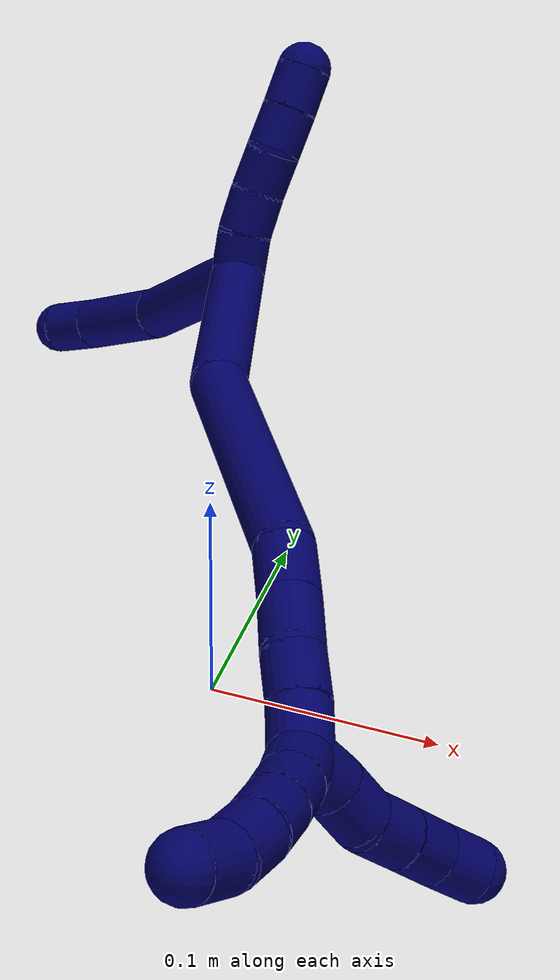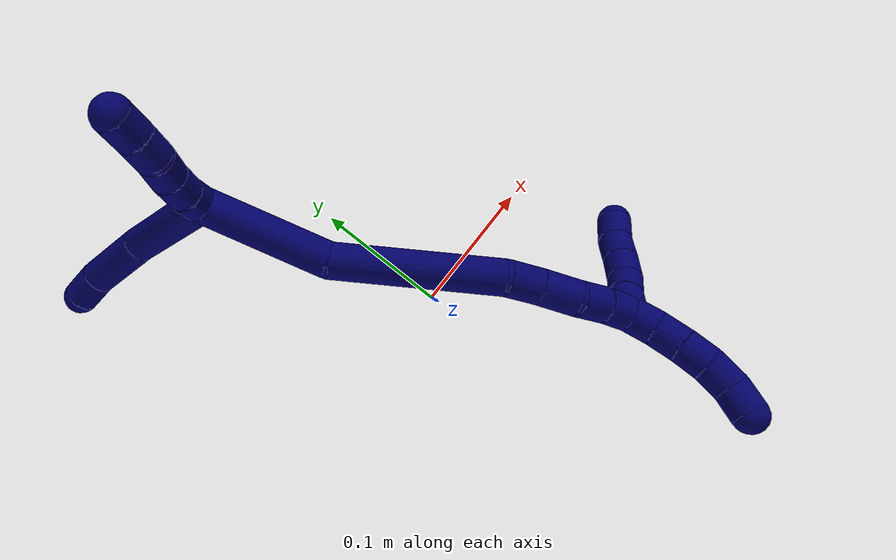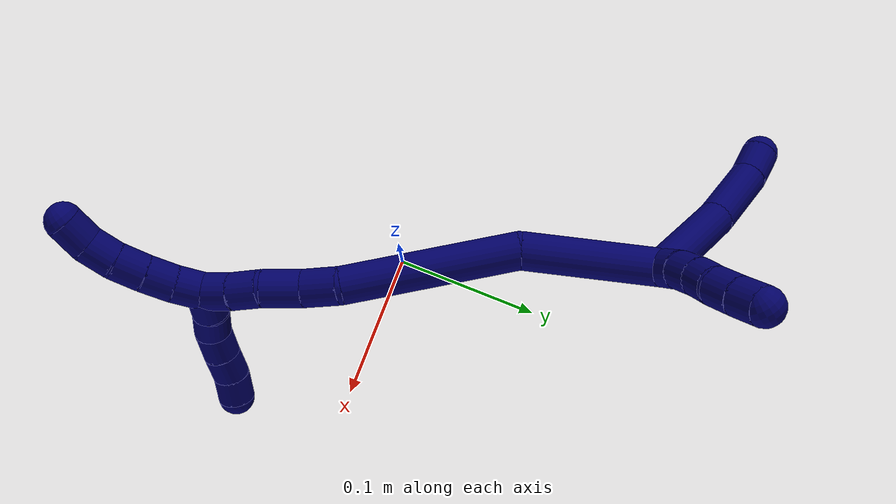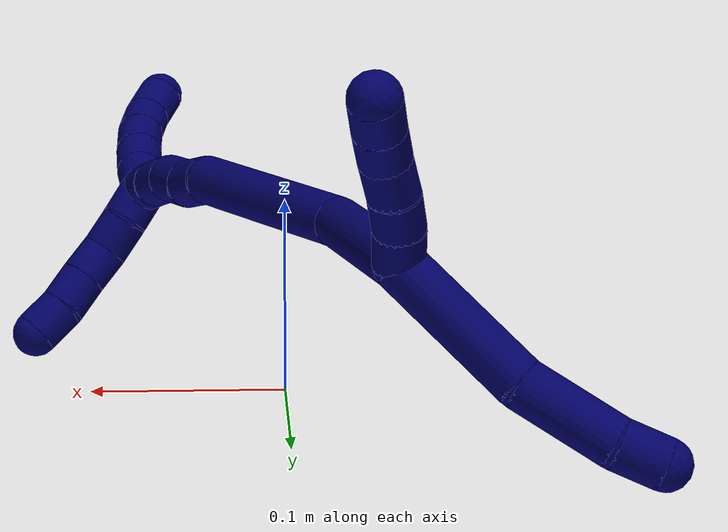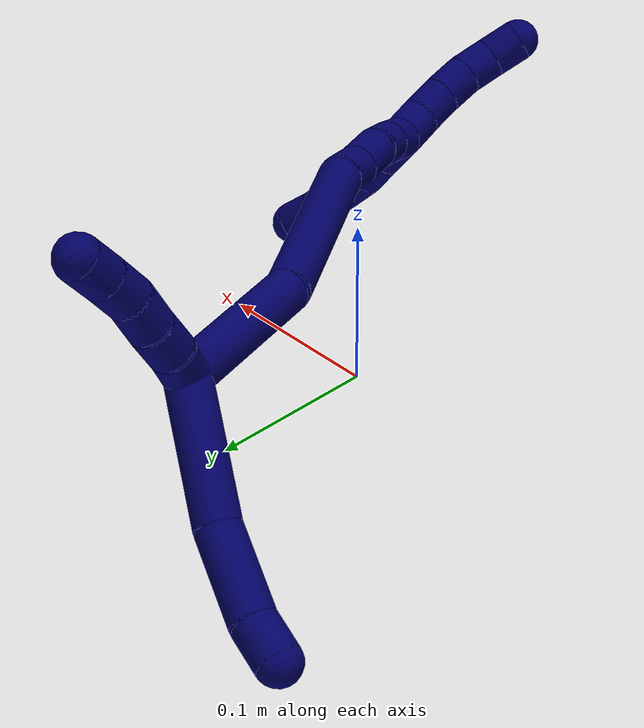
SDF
<sdf version="1.7">
 <world name="default">
  <model name="7">
   <static>0</static>
   <link name="7">
    <collision name="collision-cylinder-e_1_2_8">
     <pose>0.027148 0.025875 0.007907 -1.27424 0.787083 -0.596247</pose>
     <geometry><cylinder><radius>0.0125</radius><length>0.076656</length></cylinder></geometry>
     <surface>
      <friction><ode><mu>1.16</mu><mu2>1.16</mu2><slip1>0</slip1><slip2>0</slip2></ode></friction>
      <contact><ode><kp>1e+06</kp><kd>1</kd><max_vel>0</max_vel><min_depth>0.001</min_depth></ode></contact>
     </surface>
    </collision>
    <visual name="visual-cylinder-e_1_2_8">
     <pose>0.027148 0.025875 0.007907 -1.27424 0.787083 -0.596247</pose>
     <geometry><cylinder><radius>0.0125</radius><length>0.076656</length></cylinder></geometry>
     <material><ambient>0.003922 0 0.403922 1</ambient></material>
    </visual>
    <collision name="collision-cylinder-e_2_8_9">
     <pose>0.07015 0.071095 0.016575 -1.53144 0.686182 -0.661617</pose>
     <geometry><cylinder><radius>0.0125</radius><length>0.050047</length></cylinder></geometry>
     <surface>
      <friction><ode><mu>1.16</mu><mu2>1.16</mu2><slip1>0</slip1><slip2>0</slip2></ode></friction>
      <contact><ode><kp>1e+06</kp><kd>1</kd><max_vel>0</max_vel><min_depth>0.001</min_depth></ode></contact>
     </surface>
    </collision>
    <visual name="visual-cylinder-e_2_8_9">
     <pose>0.07015 0.071095 0.016575 -1.53144 0.686182 -0.661617</pose>
     <geometry><cylinder><radius>0.0125</radius><length>0.050047</length></cylinder></geometry>
     <material><ambient>0.003922 0 0.403922 1</ambient></material>
    </visual>
    <collision name="collision-cylinder-e_3_9_6">
     <pose>0.093151 0.099434 0.015405 -1.78233 0.66054 -0.802489</pose>
     <geometry><cylinder><radius>0.0125</radius><length>0.023297</length></cylinder></geometry>
     <surface>
      <friction><ode><mu>1.16</mu><mu2>1.16</mu2><slip1>0</slip1><slip2>0</slip2></ode></friction>
      <contact><ode><kp>1e+06</kp><kd>1</kd><max_vel>0</max_vel><min_depth>0.001</min_depth></ode></contact>
     </surface>
    </collision>
    <visual name="visual-cylinder-e_3_9_6">
     <pose>0.093151 0.099434 0.015405 -1.78233 0.66054 -0.802489</pose>
     <geometry><cylinder><radius>0.0125</radius><length>0.023297</length></cylinder></geometry>
     <material><ambient>0.003922 0 0.403922 1</ambient></material>
    </visual>
    <collision name="collision-cylinder-e_1_2_10">
     <pose>-0.009356 0.003528 -0.000127 -1.60678 -1.20995 1.24382</pose>
     <geometry><cylinder><radius>0.0125</radius><length>0.02</length></cylinder></geometry>
     <surface>
      <friction><ode><mu>1.16</mu><mu2>1.16</mu2><slip1>0</slip1><slip2>0</slip2></ode></friction>
      <contact><ode><kp>1e+06</kp><kd>1</kd><max_vel>0</max_vel><min_depth>0.001</min_depth></ode></contact>
     </surface>
    </collision>
    <visual name="visual-cylinder-e_1_2_10">
     <pose>-0.009356 0.003528 -0.000127 -1.60678 -1.20995 1.24382</pose>
     <geometry><cylinder><radius>0.0125</radius><length>0.02</length></cylinder></geometry>
     <material><ambient>0.003922 0 0.403922 1</ambient></material>
    </visual>
    <collision name="collision-cylinder-e_2_10_11">
     <pose>-0.028303 0.00969 0.00078 -1.19677 -1.28398 0.942791</pose>
     <geometry><cylinder><radius>0.0125</radius><length>0.02</length></cylinder></geometry>
     <surface>
      <friction><ode><mu>1.16</mu><mu2>1.16</mu2><slip1>0</slip1><slip2>0</slip2></ode></friction>
      <contact><ode><kp>1e+06</kp><kd>1</kd><max_vel>0</max_vel><min_depth>0.001</min_depth></ode></contact>
     </surface>
    </collision>
    <visual name="visual-cylinder-e_2_10_11">
     <pose>-0.028303 0.00969 0.00078 -1.19677 -1.28398 0.942791</pose>
     <geometry><cylinder><radius>0.0125</radius><length>0.02</length></cylinder></geometry>
     <material><ambient>0.003922 0 0.403922 1</ambient></material>
    </visual>
    <collision name="collision-cylinder-e_3_11_12">
     <pose>-0.047731 0.013948 0.002592 -1.12352 -1.38967 0.96628</pose>
     <geometry><cylinder><radius>0.0125</radius><length>0.02</length></cylinder></geometry>
     <surface>
      <friction><ode><mu>1.16</mu><mu2>1.16</mu2><slip1>0</slip1><slip2>0</slip2></ode></friction>
      <contact><ode><kp>1e+06</kp><kd>1</kd><max_vel>0</max_vel><min_depth>0.001</min_depth></ode></contact>
     </surface>
    </collision>
    <visual name="visual-cylinder-e_3_11_12">
     <pose>-0.047731 0.013948 0.002592 -1.12352 -1.38967 0.96628</pose>
     <geometry><cylinder><radius>0.0125</radius><length>0.02</length></cylinder></geometry>
     <material><ambient>0.003922 0 0.403922 1</ambient></material>
    </visual>
    <collision name="collision-cylinder-e_4_12_13">
     <pose>-0.066772 0.018642 0.005792 -0.903162 -1.16912 0.621097</pose>
     <geometry><cylinder><radius>0.0125</radius><length>0.02</length></cylinder></geometry>
     <surface>
      <friction><ode><mu>1.16</mu><mu2>1.16</mu2><slip1>0</slip1><slip2>0</slip2></ode></friction>
      <contact><ode><kp>1e+06</kp><kd>1</kd><max_vel>0</max_vel><min_depth>0.001</min_depth></ode></contact>
     </surface>
    </collision>
    <visual name="visual-cylinder-e_4_12_13">
     <pose>-0.066772 0.018642 0.005792 -0.903162 -1.16912 0.621097</pose>
     <geometry><cylinder><radius>0.0125</radius><length>0.02</length></cylinder></geometry>
     <material><ambient>0.003922 0 0.403922 1</ambient></material>
    </visual>
    <collision name="collision-cylinder-e_5_13_5">
     <pose>-0.085016 0.025157 0.010742 -0.9374 -1.12915 0.62064</pose>
     <geometry><cylinder><radius>0.0125</radius><length>0.02</length></cylinder></geometry>
     <surface>
      <friction><ode><mu>1.16</mu><mu2>1.16</mu2><slip1>0</slip1><slip2>0</slip2></ode></friction>
      <contact><ode><kp>1e+06</kp><kd>1</kd><max_vel>0</max_vel><min_depth>0.001</min_depth></ode></contact>
     </surface>
    </collision>
    <visual name="visual-cylinder-e_5_13_5">
     <pose>-0.085016 0.025157 0.010742 -0.9374 -1.12915 0.62064</pose>
     <geometry><cylinder><radius>0.0125</radius><length>0.02</length></cylinder></geometry>
     <material><ambient>0.003922 0 0.403922 1</ambient></material>
    </visual>
    <collision name="collision-cylinder-e_1_2_14">
     <pose>0.00746 -0.033935 -0.029124 2.28005 0.165302 0.356689</pose>
     <geometry><cylinder><radius>0.0125</radius><length>0.090674</length></cylinder></geometry>
     <surface>
      <friction><ode><mu>1.16</mu><mu2>1.16</mu2><slip1>0</slip1><slip2>0</slip2></ode></friction>
      <contact><ode><kp>1e+06</kp><kd>1</kd><max_vel>0</max_vel><min_depth>0.001</min_depth></ode></contact>
     </surface>
    </collision>
    <visual name="visual-cylinder-e_1_2_14">
     <pose>0.00746 -0.033935 -0.029124 2.28005 0.165302 0.356689</pose>
     <geometry><cylinder><radius>0.0125</radius><length>0.090674</length></cylinder></geometry>
     <material><ambient>0.003922 0 0.403922 1</ambient></material>
    </visual>
    <collision name="collision-cylinder-e_2_14_15">
     <pose>0.016392 -0.120529 -0.081952 1.99377 0.025485 0.039416</pose>
     <geometry><cylinder><radius>0.0125</radius><length>0.115534</length></cylinder></geometry>
     <surface>
      <friction><ode><mu>1.16</mu><mu2>1.16</mu2><slip1>0</slip1><slip2>0</slip2></ode></friction>
      <contact><ode><kp>1e+06</kp><kd>1</kd><max_vel>0</max_vel><min_depth>0.001</min_depth></ode></contact>
     </surface>
    </collision>
    <visual name="visual-cylinder-e_2_14_15">
     <pose>0.016392 -0.120529 -0.081952 1.99377 0.025485 0.039416</pose>
     <geometry><cylinder><radius>0.0125</radius><length>0.115534</length></cylinder></geometry>
     <material><ambient>0.003922 0 0.403922 1</ambient></material>
    </visual>
    <collision name="collision-cylinder-e_3_15_16">
     <pose>0.022054 -0.183848 -0.110671 2.01054 0.341663 0.530804</pose>
     <geometry><cylinder><radius>0.0125</radius><length>0.025008</length></cylinder></geometry>
     <surface>
      <friction><ode><mu>1.16</mu><mu2>1.16</mu2><slip1>0</slip1><slip2>0</slip2></ode></friction>
      <contact><ode><kp>1e+06</kp><kd>1</kd><max_vel>0</max_vel><min_depth>0.001</min_depth></ode></contact>
     </surface>
    </collision>
    <visual name="visual-cylinder-e_3_15_16">
     <pose>0.022054 -0.183848 -0.110671 2.01054 0.341663 0.530804</pose>
     <geometry><cylinder><radius>0.0125</radius><length>0.025008</length></cylinder></geometry>
     <material><ambient>0.003922 0 0.403922 1</ambient></material>
    </visual>
    <collision name="collision-cylinder-e_4_16_17">
     <pose>0.028785 -0.205742 -0.122896 2.14136 0.188135 0.341933</pose>
     <geometry><cylinder><radius>0.0125</radius><length>0.027174</length></cylinder></geometry>
     <surface>
      <friction><ode><mu>1.16</mu><mu2>1.16</mu2><slip1>0</slip1><slip2>0</slip2></ode></friction>
      <contact><ode><kp>1e+06</kp><kd>1</kd><max_vel>0</max_vel><min_depth>0.001</min_depth></ode></contact>
     </surface>
    </collision>
    <visual name="visual-cylinder-e_4_16_17">
     <pose>0.028785 -0.205742 -0.122896 2.14136 0.188135 0.341933</pose>
     <geometry><cylinder><radius>0.0125</radius><length>0.027174</length></cylinder></geometry>
     <material><ambient>0.003922 0 0.403922 1</ambient></material>
    </visual>
    <collision name="collision-cylinder-e_5_17_18">
     <pose>0.035153 -0.225847 -0.13388 1.97311 0.377891 0.563025</pose>
     <geometry><cylinder><radius>0.0125</radius><length>0.020748</length></cylinder></geometry>
     <surface>
      <friction><ode><mu>1.16</mu><mu2>1.16</mu2><slip1>0</slip1><slip2>0</slip2></ode></friction>
      <contact><ode><kp>1e+06</kp><kd>1</kd><max_vel>0</max_vel><min_depth>0.001</min_depth></ode></contact>
     </surface>
    </collision>
    <visual name="visual-cylinder-e_5_17_18">
     <pose>0.035153 -0.225847 -0.13388 1.97311 0.377891 0.563025</pose>
     <geometry><cylinder><radius>0.0125</radius><length>0.020748</length></cylinder></geometry>
     <material><ambient>0.003922 0 0.403922 1</ambient></material>
    </visual>
    <collision name="collision-cylinder-e_6_18_1">
     <pose>0.043283 -0.243127 -0.142084 2.05559 0.42514 0.686896</pose>
     <geometry><cylinder><radius>0.0125</radius><length>0.020863</length></cylinder></geometry>
     <surface>
      <friction><ode><mu>1.16</mu><mu2>1.16</mu2><slip1>0</slip1><slip2>0</slip2></ode></friction>
      <contact><ode><kp>1e+06</kp><kd>1</kd><max_vel>0</max_vel><min_depth>0.001</min_depth></ode></contact>
     </surface>
    </collision>
    <visual name="visual-cylinder-e_6_18_1">
     <pose>0.043283 -0.243127 -0.142084 2.05559 0.42514 0.686896</pose>
     <geometry><cylinder><radius>0.0125</radius><length>0.020863</length></cylinder></geometry>
     <material><ambient>0.003922 0 0.403922 1</ambient></material>
    </visual>
    <collision name="collision-cylinder-e_1_1_19">
     <pose>0.052283 -0.255319 -0.138537 0.443029 0.489025 0.112264</pose>
     <geometry><cylinder><radius>0.0125</radius><length>0.02</length></cylinder></geometry>
     <surface>
      <friction><ode><mu>1.16</mu><mu2>1.16</mu2><slip1>0</slip1><slip2>0</slip2></ode></friction>
      <contact><ode><kp>1e+06</kp><kd>1</kd><max_vel>0</max_vel><min_depth>0.001</min_depth></ode></contact>
     </surface>
    </collision>
    <visual name="visual-cylinder-e_1_1_19">
     <pose>0.052283 -0.255319 -0.138537 0.443029 0.489025 0.112264</pose>
     <geometry><cylinder><radius>0.0125</radius><length>0.02</length></cylinder></geometry>
     <material><ambient>0.003922 0 0.403922 1</ambient></material>
    </visual>
    <collision name="collision-cylinder-e_2_19_20">
     <pose>0.062169 -0.264007 -0.123559 0.610969 0.545498 0.175967</pose>
     <geometry><cylinder><radius>0.0125</radius><length>0.02</length></cylinder></geometry>
     <surface>
      <friction><ode><mu>1.16</mu><mu2>1.16</mu2><slip1>0</slip1><slip2>0</slip2></ode></friction>
      <contact><ode><kp>1e+06</kp><kd>1</kd><max_vel>0</max_vel><min_depth>0.001</min_depth></ode></contact>
     </surface>
    </collision>
    <visual name="visual-cylinder-e_2_19_20">
     <pose>0.062169 -0.264007 -0.123559 0.610969 0.545498 0.175967</pose>
     <geometry><cylinder><radius>0.0125</radius><length>0.02</length></cylinder></geometry>
     <material><ambient>0.003922 0 0.403922 1</ambient></material>
    </visual>
    <collision name="collision-cylinder-e_3_20_21">
     <pose>0.070403 -0.272241 -0.107632 0.35715 0.30941 0.056283</pose>
     <geometry><cylinder><radius>0.0125</radius><length>0.02</length></cylinder></geometry>
     <surface>
      <friction><ode><mu>1.16</mu><mu2>1.16</mu2><slip1>0</slip1><slip2>0</slip2></ode></friction>
      <contact><ode><kp>1e+06</kp><kd>1</kd><max_vel>0</max_vel><min_depth>0.001</min_depth></ode></contact>
     </surface>
    </collision>
    <visual name="visual-cylinder-e_3_20_21">
     <pose>0.070403 -0.272241 -0.107632 0.35715 0.30941 0.056283</pose>
     <geometry><cylinder><radius>0.0125</radius><length>0.02</length></cylinder></geometry>
     <material><ambient>0.003922 0 0.403922 1</ambient></material>
    </visual>
    <collision name="collision-cylinder-e_4_21_22">
     <pose>0.07676 -0.278542 -0.089753 0.320355 0.337626 0.055058</pose>
     <geometry><cylinder><radius>0.0125</radius><length>0.02</length></cylinder></geometry>
     <surface>
      <friction><ode><mu>1.16</mu><mu2>1.16</mu2><slip1>0</slip1><slip2>0</slip2></ode></friction>
      <contact><ode><kp>1e+06</kp><kd>1</kd><max_vel>0</max_vel><min_depth>0.001</min_depth></ode></contact>
     </surface>
    </collision>
    <visual name="visual-cylinder-e_4_21_22">
     <pose>0.07676 -0.278542 -0.089753 0.320355 0.337626 0.055058</pose>
     <geometry><cylinder><radius>0.0125</radius><length>0.02</length></cylinder></geometry>
     <material><ambient>0.003922 0 0.403922 1</ambient></material>
    </visual>
    <collision name="collision-cylinder-e_5_22_4">
     <pose>0.082356 -0.285897 -0.072105 0.46705 0.230397 0.055033</pose>
     <geometry><cylinder><radius>0.0125</radius><length>0.02</length></cylinder></geometry>
     <surface>
      <friction><ode><mu>1.16</mu><mu2>1.16</mu2><slip1>0</slip1><slip2>0</slip2></ode></friction>
      <contact><ode><kp>1e+06</kp><kd>1</kd><max_vel>0</max_vel><min_depth>0.001</min_depth></ode></contact>
     </surface>
    </collision>
    <visual name="visual-cylinder-e_5_22_4">
     <pose>0.082356 -0.285897 -0.072105 0.46705 0.230397 0.055033</pose>
     <geometry><cylinder><radius>0.0125</radius><length>0.02</length></cylinder></geometry>
     <material><ambient>0.003922 0 0.403922 1</ambient></material>
    </visual>
    <collision name="collision-cylinder-e_1_1_23">
     <pose>0.046816 -0.25749 -0.154508 2.50145 -0.077061 -0.231558</pose>
     <geometry><cylinder><radius>0.0125</radius><length>0.02</length></cylinder></geometry>
     <surface>
      <friction><ode><mu>1.16</mu><mu2>1.16</mu2><slip1>0</slip1><slip2>0</slip2></ode></friction>
      <contact><ode><kp>1e+06</kp><kd>1</kd><max_vel>0</max_vel><min_depth>0.001</min_depth></ode></contact>
     </surface>
    </collision>
    <visual name="visual-cylinder-e_1_1_23">
     <pose>0.046816 -0.25749 -0.154508 2.50145 -0.077061 -0.231558</pose>
     <geometry><cylinder><radius>0.0125</radius><length>0.02</length></cylinder></geometry>
     <material><ambient>0.003922 0 0.403922 1</ambient></material>
    </visual>
    <collision name="collision-cylinder-e_2_23_24">
     <pose>0.044986 -0.268503 -0.171066 2.60792 -0.106149 -0.383901</pose>
     <geometry><cylinder><radius>0.0125</radius><length>0.02</length></cylinder></geometry>
     <surface>
      <friction><ode><mu>1.16</mu><mu2>1.16</mu2><slip1>0</slip1><slip2>0</slip2></ode></friction>
      <contact><ode><kp>1e+06</kp><kd>1</kd><max_vel>0</max_vel><min_depth>0.001</min_depth></ode></contact>
     </surface>
    </collision>
    <visual name="visual-cylinder-e_2_23_24">
     <pose>0.044986 -0.268503 -0.171066 2.60792 -0.106149 -0.383901</pose>
     <geometry><cylinder><radius>0.0125</radius><length>0.02</length></cylinder></geometry>
     <material><ambient>0.003922 0 0.403922 1</ambient></material>
    </visual>
    <collision name="collision-cylinder-e_3_24_25">
     <pose>0.04321 -0.278155 -0.18848 2.66299 -0.071723 -0.292005</pose>
     <geometry><cylinder><radius>0.0125</radius><length>0.02</length></cylinder></geometry>
     <surface>
      <friction><ode><mu>1.16</mu><mu2>1.16</mu2><slip1>0</slip1><slip2>0</slip2></ode></friction>
      <contact><ode><kp>1e+06</kp><kd>1</kd><max_vel>0</max_vel><min_depth>0.001</min_depth></ode></contact>
     </surface>
    </collision>
    <visual name="visual-cylinder-e_3_24_25">
     <pose>0.04321 -0.278155 -0.18848 2.66299 -0.071723 -0.292005</pose>
     <geometry><cylinder><radius>0.0125</radius><length>0.02</length></cylinder></geometry>
     <material><ambient>0.003922 0 0.403922 1</ambient></material>
    </visual>
    <collision name="collision-cylinder-e_4_25_26">
     <pose>0.042656 -0.28616 -0.206733 2.79349 0.016276 0.092502</pose>
     <geometry><cylinder><radius>0.0125</radius><length>0.02</length></cylinder></geometry>
     <surface>
      <friction><ode><mu>1.16</mu><mu2>1.16</mu2><slip1>0</slip1><slip2>0</slip2></ode></friction>
      <contact><ode><kp>1e+06</kp><kd>1</kd><max_vel>0</max_vel><min_depth>0.001</min_depth></ode></contact>
     </surface>
    </collision>
    <visual name="visual-cylinder-e_4_25_26">
     <pose>0.042656 -0.28616 -0.206733 2.79349 0.016276 0.092502</pose>
     <geometry><cylinder><radius>0.0125</radius><length>0.02</length></cylinder></geometry>
     <material><ambient>0.003922 0 0.403922 1</ambient></material>
    </visual>
    <collision name="collision-cylinder-e_5_26_3">
     <pose>0.041875 -0.290363 -0.226056 3.06191 -0.094604 -1.7418</pose>
     <geometry><cylinder><radius>0.0125</radius><length>0.02</length></cylinder></geometry>
     <surface>
      <friction><ode><mu>1.16</mu><mu2>1.16</mu2><slip1>0</slip1><slip2>0</slip2></ode></friction>
      <contact><ode><kp>1e+06</kp><kd>1</kd><max_vel>0</max_vel><min_depth>0.001</min_depth></ode></contact>
     </surface>
    </collision>
    <visual name="visual-cylinder-e_5_26_3">
     <pose>0.041875 -0.290363 -0.226056 3.06191 -0.094604 -1.7418</pose>
     <geometry><cylinder><radius>0.0125</radius><length>0.02</length></cylinder></geometry>
     <material><ambient>0.003922 0 0.403922 1</ambient></material>
    </visual>
    <collision name="collision-sphere-3">
     <pose>0.04093 -0.291155 -0.235979 0 -0 0</pose>
     <geometry><sphere><radius>0.0125</radius></sphere></geometry>
     <surface>
      <friction><ode><mu>1.16</mu><mu2>1.16</mu2><slip1>0</slip1><slip2>0</slip2></ode></friction>
      <contact><ode><kp>1e+06</kp><kd>1</kd><max_vel>0</max_vel><min_depth>0.001</min_depth></ode></contact>
     </surface>
    </collision>
    <visual name="visual-sphere-3">
     <pose>0.04093 -0.291155 -0.235979 0 -0 0</pose>
     <geometry><sphere><radius>0.0125</radius></sphere></geometry>
     <material><ambient>0.003922 0 0.403922 1</ambient></material>
    </visual>
    <collision name="collision-sphere-26">
     <pose>0.042819 -0.28957 -0.216132 0 -0 0</pose>
     <geometry><sphere><radius>0.0125</radius></sphere></geometry>
     <surface>
      <friction><ode><mu>1.16</mu><mu2>1.16</mu2><slip1>0</slip1><slip2>0</slip2></ode></friction>
      <contact><ode><kp>1e+06</kp><kd>1</kd><max_vel>0</max_vel><min_depth>0.001</min_depth></ode></contact>
     </surface>
    </collision>
    <visual name="visual-sphere-26">
     <pose>0.042819 -0.28957 -0.216132 0 -0 0</pose>
     <geometry><sphere><radius>0.0125</radius></sphere></geometry>
     <material><ambient>0.003922 0 0.403922 1</ambient></material>
    </visual>
    <collision name="collision-sphere-25">
     <pose>0.042494 -0.282749 -0.197334 0 -0 0</pose>
     <geometry><sphere><radius>0.0125</radius></sphere></geometry>
     <surface>
      <friction><ode><mu>1.16</mu><mu2>1.16</mu2><slip1>0</slip1><slip2>0</slip2></ode></friction>
      <contact><ode><kp>1e+06</kp><kd>1</kd><max_vel>0</max_vel><min_depth>0.001</min_depth></ode></contact>
     </surface>
    </collision>
    <visual name="visual-sphere-25">
     <pose>0.042494 -0.282749 -0.197334 0 -0 0</pose>
     <geometry><sphere><radius>0.0125</radius></sphere></geometry>
     <material><ambient>0.003922 0 0.403922 1</ambient></material>
    </visual>
    <collision name="collision-sphere-24">
     <pose>0.043927 -0.273562 -0.179627 0 -0 0</pose>
     <geometry><sphere><radius>0.0125</radius></sphere></geometry>
     <surface>
      <friction><ode><mu>1.16</mu><mu2>1.16</mu2><slip1>0</slip1><slip2>0</slip2></ode></friction>
      <contact><ode><kp>1e+06</kp><kd>1</kd><max_vel>0</max_vel><min_depth>0.001</min_depth></ode></contact>
     </surface>
    </collision>
    <visual name="visual-sphere-24">
     <pose>0.043927 -0.273562 -0.179627 0 -0 0</pose>
     <geometry><sphere><radius>0.0125</radius></sphere></geometry>
     <material><ambient>0.003922 0 0.403922 1</ambient></material>
    </visual>
    <collision name="collision-sphere-23">
     <pose>0.046046 -0.263445 -0.162505 0 -0 0</pose>
     <geometry><sphere><radius>0.0125</radius></sphere></geometry>
     <surface>
      <friction><ode><mu>1.16</mu><mu2>1.16</mu2><slip1>0</slip1><slip2>0</slip2></ode></friction>
      <contact><ode><kp>1e+06</kp><kd>1</kd><max_vel>0</max_vel><min_depth>0.001</min_depth></ode></contact>
     </surface>
    </collision>
    <visual name="visual-sphere-23">
     <pose>0.046046 -0.263445 -0.162505 0 -0 0</pose>
     <geometry><sphere><radius>0.0125</radius></sphere></geometry>
     <material><ambient>0.003922 0 0.403922 1</ambient></material>
    </visual>
    <collision name="collision-sphere-4">
     <pose>0.08464 -0.290281 -0.063411 0 -0 0</pose>
     <geometry><sphere><radius>0.0125</radius></sphere></geometry>
     <surface>
      <friction><ode><mu>1.16</mu><mu2>1.16</mu2><slip1>0</slip1><slip2>0</slip2></ode></friction>
      <contact><ode><kp>1e+06</kp><kd>1</kd><max_vel>0</max_vel><min_depth>0.001</min_depth></ode></contact>
     </surface>
    </collision>
    <visual name="visual-sphere-4">
     <pose>0.08464 -0.290281 -0.063411 0 -0 0</pose>
     <geometry><sphere><radius>0.0125</radius></sphere></geometry>
     <material><ambient>0.003922 0 0.403922 1</ambient></material>
    </visual>
    <collision name="collision-sphere-22">
     <pose>0.080073 -0.281514 -0.080798 0 -0 0</pose>
     <geometry><sphere><radius>0.0125</radius></sphere></geometry>
     <surface>
      <friction><ode><mu>1.16</mu><mu2>1.16</mu2><slip1>0</slip1><slip2>0</slip2></ode></friction>
      <contact><ode><kp>1e+06</kp><kd>1</kd><max_vel>0</max_vel><min_depth>0.001</min_depth></ode></contact>
     </surface>
    </collision>
    <visual name="visual-sphere-22">
     <pose>0.080073 -0.281514 -0.080798 0 -0 0</pose>
     <geometry><sphere><radius>0.0125</radius></sphere></geometry>
     <material><ambient>0.003922 0 0.403922 1</ambient></material>
    </visual>
    <collision name="collision-sphere-21">
     <pose>0.073448 -0.275571 -0.098708 0 -0 0</pose>
     <geometry><sphere><radius>0.0125</radius></sphere></geometry>
     <surface>
      <friction><ode><mu>1.16</mu><mu2>1.16</mu2><slip1>0</slip1><slip2>0</slip2></ode></friction>
      <contact><ode><kp>1e+06</kp><kd>1</kd><max_vel>0</max_vel><min_depth>0.001</min_depth></ode></contact>
     </surface>
    </collision>
    <visual name="visual-sphere-21">
     <pose>0.073448 -0.275571 -0.098708 0 -0 0</pose>
     <geometry><sphere><radius>0.0125</radius></sphere></geometry>
     <material><ambient>0.003922 0 0.403922 1</ambient></material>
    </visual>
    <collision name="collision-sphere-20">
     <pose>0.067358 -0.268911 -0.116557 0 -0 0</pose>
     <geometry><sphere><radius>0.0125</radius></sphere></geometry>
     <surface>
      <friction><ode><mu>1.16</mu><mu2>1.16</mu2><slip1>0</slip1><slip2>0</slip2></ode></friction>
      <contact><ode><kp>1e+06</kp><kd>1</kd><max_vel>0</max_vel><min_depth>0.001</min_depth></ode></contact>
     </surface>
    </collision>
    <visual name="visual-sphere-20">
     <pose>0.067358 -0.268911 -0.116557 0 -0 0</pose>
     <geometry><sphere><radius>0.0125</radius></sphere></geometry>
     <material><ambient>0.003922 0 0.403922 1</ambient></material>
    </visual>
    <collision name="collision-sphere-11">
     <pose>-0.037895 0.012324 0.001813 0 -0 0</pose>
     <geometry><sphere><radius>0.0125</radius></sphere></geometry>
     <surface>
      <friction><ode><mu>1.16</mu><mu2>1.16</mu2><slip1>0</slip1><slip2>0</slip2></ode></friction>
      <contact><ode><kp>1e+06</kp><kd>1</kd><max_vel>0</max_vel><min_depth>0.001</min_depth></ode></contact>
     </surface>
    </collision>
    <visual name="visual-sphere-11">
     <pose>-0.037895 0.012324 0.001813 0 -0 0</pose>
     <geometry><sphere><radius>0.0125</radius></sphere></geometry>
     <material><ambient>0.003922 0 0.403922 1</ambient></material>
    </visual>
    <collision name="collision-sphere-10">
     <pose>-0.018712 0.007057 -0.000254 0 -0 0</pose>
     <geometry><sphere><radius>0.0125</radius></sphere></geometry>
     <surface>
      <friction><ode><mu>1.16</mu><mu2>1.16</mu2><slip1>0</slip1><slip2>0</slip2></ode></friction>
      <contact><ode><kp>1e+06</kp><kd>1</kd><max_vel>0</max_vel><min_depth>0.001</min_depth></ode></contact>
     </surface>
    </collision>
    <visual name="visual-sphere-10">
     <pose>-0.018712 0.007057 -0.000254 0 -0 0</pose>
     <geometry><sphere><radius>0.0125</radius></sphere></geometry>
     <material><ambient>0.003922 0 0.403922 1</ambient></material>
    </visual>
    <collision name="collision-sphere-6">
     <pose>0.100298 0.108427 0.013474 0 -0 0</pose>
     <geometry><sphere><radius>0.0125</radius></sphere></geometry>
     <surface>
      <friction><ode><mu>1.16</mu><mu2>1.16</mu2><slip1>0</slip1><slip2>0</slip2></ode></friction>
      <contact><ode><kp>1e+06</kp><kd>1</kd><max_vel>0</max_vel><min_depth>0.001</min_depth></ode></contact>
     </surface>
    </collision>
    <visual name="visual-sphere-6">
     <pose>0.100298 0.108427 0.013474 0 -0 0</pose>
     <geometry><sphere><radius>0.0125</radius></sphere></geometry>
     <material><ambient>0.003922 0 0.403922 1</ambient></material>
    </visual>
    <collision name="collision-sphere-9">
     <pose>0.086004 0.09044 0.017337 0 -0 0</pose>
     <geometry><sphere><radius>0.0125</radius></sphere></geometry>
     <surface>
      <friction><ode><mu>1.16</mu><mu2>1.16</mu2><slip1>0</slip1><slip2>0</slip2></ode></friction>
      <contact><ode><kp>1e+06</kp><kd>1</kd><max_vel>0</max_vel><min_depth>0.001</min_depth></ode></contact>
     </surface>
    </collision>
    <visual name="visual-sphere-9">
     <pose>0.086004 0.09044 0.017337 0 -0 0</pose>
     <geometry><sphere><radius>0.0125</radius></sphere></geometry>
     <material><ambient>0.003922 0 0.403922 1</ambient></material>
    </visual>
    <collision name="collision-sphere-2">
     <geometry><sphere><radius>0.0125</radius></sphere></geometry>
     <surface>
      <friction><ode><mu>1.16</mu><mu2>1.16</mu2><slip1>0</slip1><slip2>0</slip2></ode></friction>
      <contact><ode><kp>1e+06</kp><kd>1</kd><max_vel>0</max_vel><min_depth>0.001</min_depth></ode></contact>
     </surface>
    </collision>
    <visual name="visual-sphere-2">
     <geometry><sphere><radius>0.0125</radius></sphere></geometry>
     <material><ambient>0.003922 0 0.403922 1</ambient></material>
    </visual>
    <collision name="collision-sphere-19">
     <pose>0.056981 -0.259103 -0.130561 0 -0 0</pose>
     <geometry><sphere><radius>0.0125</radius></sphere></geometry>
     <surface>
      <friction><ode><mu>1.16</mu><mu2>1.16</mu2><slip1>0</slip1><slip2>0</slip2></ode></friction>
      <contact><ode><kp>1e+06</kp><kd>1</kd><max_vel>0</max_vel><min_depth>0.001</min_depth></ode></contact>
     </surface>
    </collision>
    <visual name="visual-sphere-19">
     <pose>0.056981 -0.259103 -0.130561 0 -0 0</pose>
     <geometry><sphere><radius>0.0125</radius></sphere></geometry>
     <material><ambient>0.003922 0 0.403922 1</ambient></material>
    </visual>
    <collision name="collision-sphere-8">
     <pose>0.054295 0.05175 0.015813 0 -0 0</pose>
     <geometry><sphere><radius>0.0125</radius></sphere></geometry>
     <surface>
      <friction><ode><mu>1.16</mu><mu2>1.16</mu2><slip1>0</slip1><slip2>0</slip2></ode></friction>
      <contact><ode><kp>1e+06</kp><kd>1</kd><max_vel>0</max_vel><min_depth>0.001</min_depth></ode></contact>
     </surface>
    </collision>
    <visual name="visual-sphere-8">
     <pose>0.054295 0.05175 0.015813 0 -0 0</pose>
     <geometry><sphere><radius>0.0125</radius></sphere></geometry>
     <material><ambient>0.003922 0 0.403922 1</ambient></material>
    </visual>
    <collision name="collision-sphere-12">
     <pose>-0.057568 0.015572 0.003371 0 -0 0</pose>
     <geometry><sphere><radius>0.0125</radius></sphere></geometry>
     <surface>
      <friction><ode><mu>1.16</mu><mu2>1.16</mu2><slip1>0</slip1><slip2>0</slip2></ode></friction>
      <contact><ode><kp>1e+06</kp><kd>1</kd><max_vel>0</max_vel><min_depth>0.001</min_depth></ode></contact>
     </surface>
    </collision>
    <visual name="visual-sphere-12">
     <pose>-0.057568 0.015572 0.003371 0 -0 0</pose>
     <geometry><sphere><radius>0.0125</radius></sphere></geometry>
     <material><ambient>0.003922 0 0.403922 1</ambient></material>
    </visual>
    <collision name="collision-sphere-13">
     <pose>-0.075976 0.021712 0.008212 0 -0 0</pose>
     <geometry><sphere><radius>0.0125</radius></sphere></geometry>
     <surface>
      <friction><ode><mu>1.16</mu><mu2>1.16</mu2><slip1>0</slip1><slip2>0</slip2></ode></friction>
      <contact><ode><kp>1e+06</kp><kd>1</kd><max_vel>0</max_vel><min_depth>0.001</min_depth></ode></contact>
     </surface>
    </collision>
    <visual name="visual-sphere-13">
     <pose>-0.075976 0.021712 0.008212 0 -0 0</pose>
     <geometry><sphere><radius>0.0125</radius></sphere></geometry>
     <material><ambient>0.003922 0 0.403922 1</ambient></material>
    </visual>
    <collision name="collision-sphere-5">
     <pose>-0.094057 0.028603 0.013272 0 -0 0</pose>
     <geometry><sphere><radius>0.0125</radius></sphere></geometry>
     <surface>
      <friction><ode><mu>1.16</mu><mu2>1.16</mu2><slip1>0</slip1><slip2>0</slip2></ode></friction>
      <contact><ode><kp>1e+06</kp><kd>1</kd><max_vel>0</max_vel><min_depth>0.001</min_depth></ode></contact>
     </surface>
    </collision>
    <visual name="visual-sphere-5">
     <pose>-0.094057 0.028603 0.013272 0 -0 0</pose>
     <geometry><sphere><radius>0.0125</radius></sphere></geometry>
     <material><ambient>0.003922 0 0.403922 1</ambient></material>
    </visual>
    <collision name="collision-sphere-14">
     <pose>0.01492 -0.06787 -0.058248 0 -0 0</pose>
     <geometry><sphere><radius>0.0125</radius></sphere></geometry>
     <surface>
      <friction><ode><mu>1.16</mu><mu2>1.16</mu2><slip1>0</slip1><slip2>0</slip2></ode></friction>
      <contact><ode><kp>1e+06</kp><kd>1</kd><max_vel>0</max_vel><min_depth>0.001</min_depth></ode></contact>
     </surface>
    </collision>
    <visual name="visual-sphere-14">
     <pose>0.01492 -0.06787 -0.058248 0 -0 0</pose>
     <geometry><sphere><radius>0.0125</radius></sphere></geometry>
     <material><ambient>0.003922 0 0.403922 1</ambient></material>
    </visual>
    <collision name="collision-sphere-15">
     <pose>0.017864 -0.173188 -0.105656 0 -0 0</pose>
     <geometry><sphere><radius>0.0125</radius></sphere></geometry>
     <surface>
      <friction><ode><mu>1.16</mu><mu2>1.16</mu2><slip1>0</slip1><slip2>0</slip2></ode></friction>
      <contact><ode><kp>1e+06</kp><kd>1</kd><max_vel>0</max_vel><min_depth>0.001</min_depth></ode></contact>
     </surface>
    </collision>
    <visual name="visual-sphere-15">
     <pose>0.017864 -0.173188 -0.105656 0 -0 0</pose>
     <geometry><sphere><radius>0.0125</radius></sphere></geometry>
     <material><ambient>0.003922 0 0.403922 1</ambient></material>
    </visual>
    <collision name="collision-sphere-16">
     <pose>0.026243 -0.194509 -0.115687 0 -0 0</pose>
     <geometry><sphere><radius>0.0125</radius></sphere></geometry>
     <surface>
      <friction><ode><mu>1.16</mu><mu2>1.16</mu2><slip1>0</slip1><slip2>0</slip2></ode></friction>
      <contact><ode><kp>1e+06</kp><kd>1</kd><max_vel>0</max_vel><min_depth>0.001</min_depth></ode></contact>
     </surface>
    </collision>
    <visual name="visual-sphere-16">
     <pose>0.026243 -0.194509 -0.115687 0 -0 0</pose>
     <geometry><sphere><radius>0.0125</radius></sphere></geometry>
     <material><ambient>0.003922 0 0.403922 1</ambient></material>
    </visual>
    <collision name="collision-sphere-17">
     <pose>0.031326 -0.216975 -0.130104 0 -0 0</pose>
     <geometry><sphere><radius>0.0125</radius></sphere></geometry>
     <surface>
      <friction><ode><mu>1.16</mu><mu2>1.16</mu2><slip1>0</slip1><slip2>0</slip2></ode></friction>
      <contact><ode><kp>1e+06</kp><kd>1</kd><max_vel>0</max_vel><min_depth>0.001</min_depth></ode></contact>
     </surface>
    </collision>
    <visual name="visual-sphere-17">
     <pose>0.031326 -0.216975 -0.130104 0 -0 0</pose>
     <geometry><sphere><radius>0.0125</radius></sphere></geometry>
     <material><ambient>0.003922 0 0.403922 1</ambient></material>
    </visual>
    <collision name="collision-sphere-18">
     <pose>0.038981 -0.234719 -0.137655 0 -0 0</pose>
     <geometry><sphere><radius>0.0125</radius></sphere></geometry>
     <surface>
      <friction><ode><mu>1.16</mu><mu2>1.16</mu2><slip1>0</slip1><slip2>0</slip2></ode></friction>
      <contact><ode><kp>1e+06</kp><kd>1</kd><max_vel>0</max_vel><min_depth>0.001</min_depth></ode></contact>
     </surface>
    </collision>
    <visual name="visual-sphere-18">
     <pose>0.038981 -0.234719 -0.137655 0 -0 0</pose>
     <geometry><sphere><radius>0.0125</radius></sphere></geometry>
     <material><ambient>0.003922 0 0.403922 1</ambient></material>
    </visual>
    <collision name="collision-sphere-1">
     <pose>0.047586 -0.251534 -0.146512 0 -0 0</pose>
     <geometry><sphere><radius>0.0125</radius></sphere></geometry>
     <surface>
      <friction><ode><mu>1.16</mu><mu2>1.16</mu2><slip1>0</slip1><slip2>0</slip2></ode></friction>
      <contact><ode><kp>1e+06</kp><kd>1</kd><max_vel>0</max_vel><min_depth>0.001</min_depth></ode></contact>
     </surface>
    </collision>
    <visual name="visual-sphere-1">
     <pose>0.047586 -0.251534 -0.146512 0 -0 0</pose>
     <geometry><sphere><radius>0.0125</radius></sphere></geometry>
     <material><ambient>0.003922 0 0.403922 1</ambient></material>
    </visual>
    <inertial>
     <pose>0.026433 -0.109873 -0.068449 0 -0 0</pose>
     <mass>0.75</mass>
     <inertia>
      <ixx>0.000261</ixx>
      <ixy>0</ixy>
      <ixz>0</ixz>
      <iyy>-6.1e-05</iyy>
      <iyz>0</iyz>
      <izz>8.3e-05</izz>
     </inertia>
    </inertial>
   </link>
   <pose>-0.046345 0.16128 0.10624 2.78449 1.14268 -2.5</pose>
  </model>
 </world>
</sdf>
